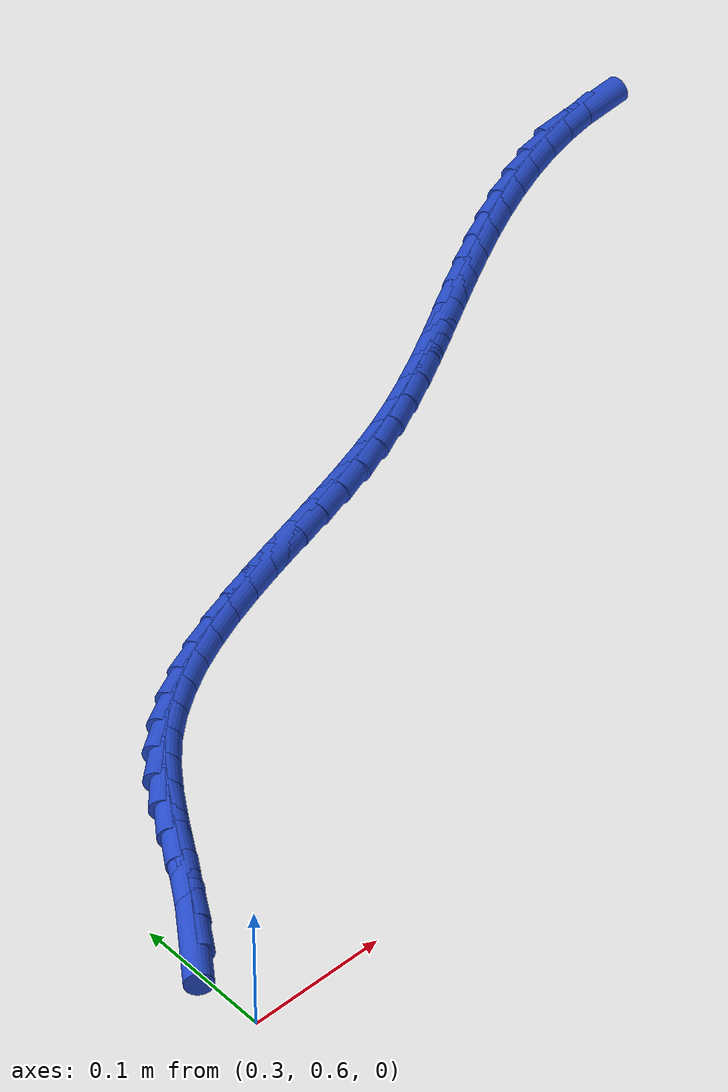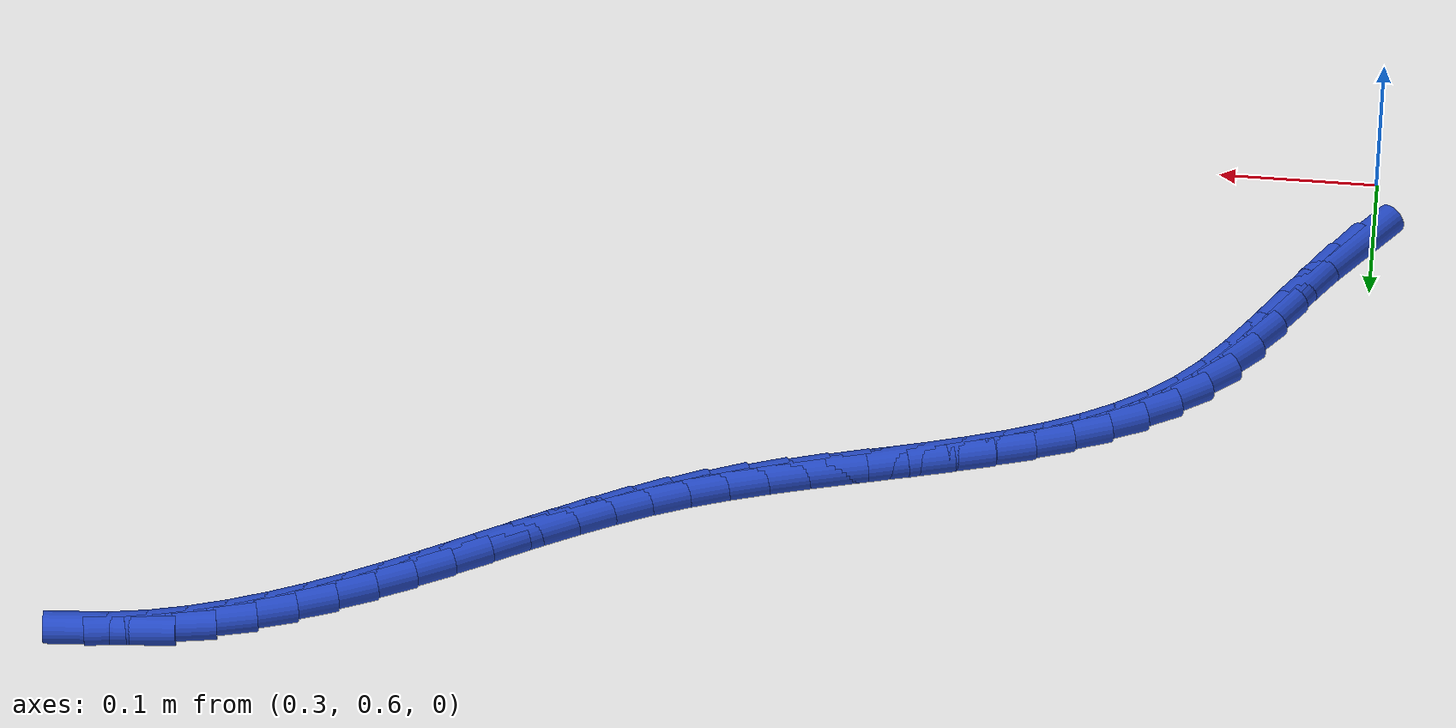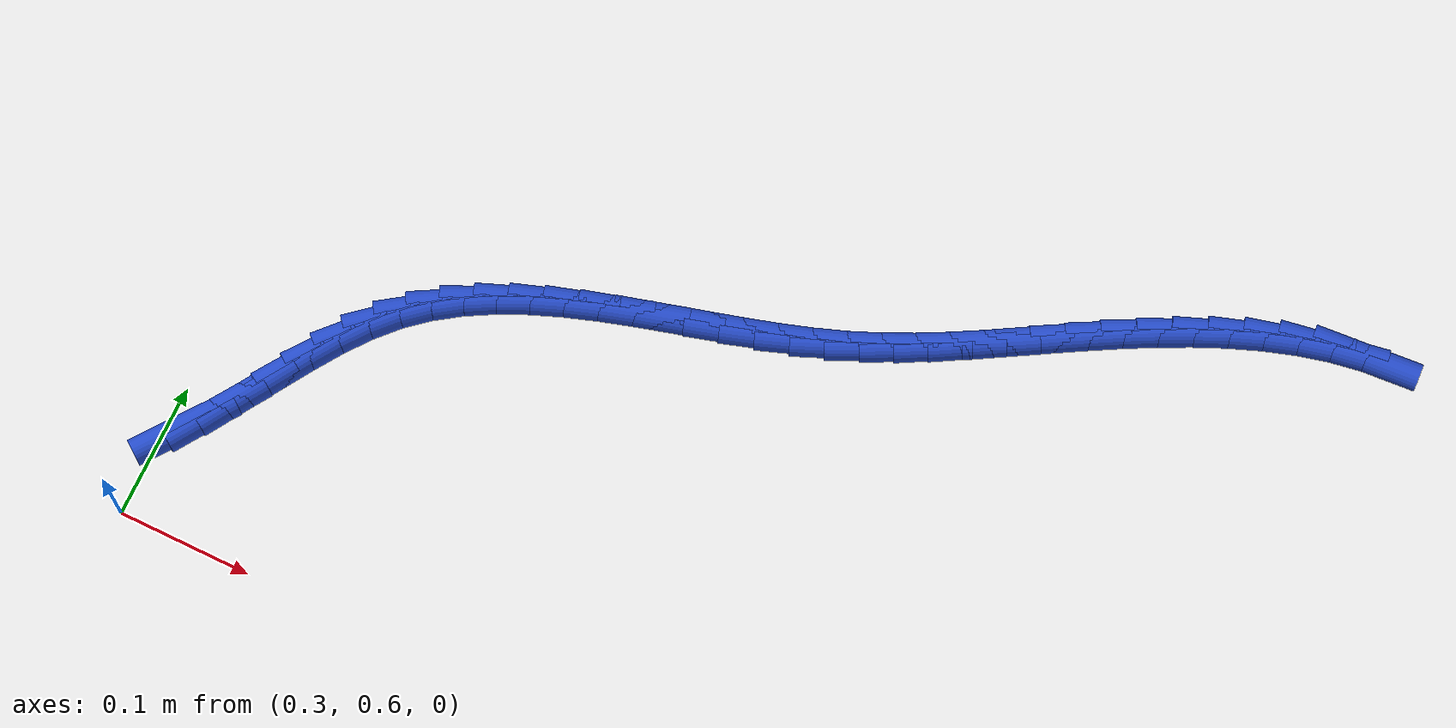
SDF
<sdf version="1.6">
 <world name="default">
  <model name="ground_plane">
   <static>1</static>
   <link name="link">
    <collision name="collision">
     <geometry><plane><normal>0 0 1</normal><size>100 100</size></plane></geometry>
     <surface><friction><ode><mu>100</mu><mu2>50</mu2></ode></friction></surface>
    </collision>
    <visual name="visual">
     <cast_shadows>0</cast_shadows>
     <geometry><plane><normal>0 0 1</normal><size>100 100</size></plane></geometry>
     <material>
      <script><uri>file://media/materials/scripts/gazebo.material</uri><name>Gazebo/WhiteGlow</name></script>
     </material>
    </visual>
   </link>
  </model>
  <model name="line">
   <link name="link_32">
    <pose>0.31317715467941326 0.6729403718139563 0.01 0 1.57 0.9326730001134195</pose>
    <collision name="collision">
     <geometry><cylinder><radius>0.01</radius><length>0.08</length></cylinder></geometry>
    </collision>
    <visual name="visual">
     <material>
      <script><name>Gazebo/Blue</name><uri>file://media/materials/scripts/gazebo.material</uri></script>
     </material>
     <geometry><cylinder><radius>0.01</radius><length>0.08</length></cylinder></geometry>
    </visual>
   </link>
   <link name="link_33">
    <pose>0.32782566175312094 0.6926921206517328 0.01 0 1.57 0.9903112232157183</pose>
    <collision name="collision">
     <geometry><cylinder><radius>0.01</radius><length>0.08</length></cylinder></geometry>
    </collision>
    <visual name="visual">
     <material>
      <script><name>Gazebo/Blue</name><uri>file://media/materials/scripts/gazebo.material</uri></script>
     </material>
     <geometry><cylinder><radius>0.01</radius><length>0.08</length></cylinder></geometry>
    </visual>
   </link>
   <link name="link_34">
    <pose>0.3414309194935599 0.7134362066186392 0.01 0 1.57 1.0179069093631676</pose>
    <collision name="collision">
     <geometry><cylinder><radius>0.01</radius><length>0.08</length></cylinder></geometry>
    </collision>
    <visual name="visual">
     <material>
      <script><name>Gazebo/Blue</name><uri>file://media/materials/scripts/gazebo.material</uri></script>
     </material>
     <geometry><cylinder><radius>0.01</radius><length>0.08</length></cylinder></geometry>
    </visual>
   </link>
   <link name="link_35">
    <pose>0.35449550749543235 0.7346075658781642 0.01 0 1.57 1.0162923461349398</pose>
    <collision name="collision">
     <geometry><cylinder><radius>0.01</radius><length>0.08</length></cylinder></geometry>
    </collision>
    <visual name="visual">
     <material>
      <script><name>Gazebo/Blue</name><uri>file://media/materials/scripts/gazebo.material</uri></script>
     </material>
     <geometry><cylinder><radius>0.01</radius><length>0.08</length></cylinder></geometry>
    </visual>
   </link>
   <link name="link_36">
    <pose>0.36752200535344104 0.7556411345937978 0.01 0 1.57 0.9849360176026919</pose>
    <collision name="collision">
     <geometry><cylinder><radius>0.01</radius><length>0.08</length></cylinder></geometry>
    </collision>
    <visual name="visual">
     <material>
      <script><name>Gazebo/Blue</name><uri>file://media/materials/scripts/gazebo.material</uri></script>
     </material>
     <geometry><cylinder><radius>0.01</radius><length>0.08</length></cylinder></geometry>
    </visual>
   </link>
   <link name="link_37">
    <pose>0.3810129926622886 0.7759718489290295 0.01 0 1.57 0.921913157869965</pose>
    <collision name="collision">
     <geometry><cylinder><radius>0.01</radius><length>0.08</length></cylinder></geometry>
    </collision>
    <visual name="visual">
     <material>
      <script><name>Gazebo/Blue</name><uri>file://media/materials/scripts/gazebo.material</uri></script>
     </material>
     <geometry><cylinder><radius>0.01</radius><length>0.08</length></cylinder></geometry>
    </visual>
   </link>
   <link name="link_38">
    <pose>0.39547104901667735 0.7950346450473482 0.01 0 1.57 0.8248569017872066</pose>
    <collision name="collision">
     <geometry><cylinder><radius>0.01</radius><length>0.08</length></cylinder></geometry>
    </collision>
    <visual name="visual">
     <material>
      <script><name>Gazebo/Blue</name><uri>file://media/materials/scripts/gazebo.material</uri></script>
     </material>
     <geometry><cylinder><radius>0.01</radius><length>0.08</length></cylinder></geometry>
    </visual>
   </link>
   <link name="link_39">
    <pose>0.41139553875256607 0.8122681884023746 0.01 0 1.57 0.7086927014092843</pose>
    <collision name="collision">
     <geometry><cylinder><radius>0.01</radius><length>0.08</length></cylinder></geometry>
    </collision>
    <visual name="visual">
     <material>
      <script><name>Gazebo/Blue</name><uri>file://media/materials/scripts/gazebo.material</uri></script>
     </material>
     <geometry><cylinder><radius>0.01</radius><length>0.08</length></cylinder></geometry>
    </visual>
   </link>
   <link name="link_40">
    <pose>0.4290411034506362 0.8273949916366288 0.01 0 1.57 0.6028204289810302</pose>
    <collision name="collision">
     <geometry><cylinder><radius>0.01</radius><length>0.08</length></cylinder></geometry>
    </collision>
    <visual name="visual">
     <material>
      <script><name>Gazebo/Blue</name><uri>file://media/materials/scripts/gazebo.material</uri></script>
     </material>
     <geometry><cylinder><radius>0.01</radius><length>0.08</length></cylinder></geometry>
    </visual>
   </link>
   <link name="link_41">
    <pose>0.44824983096740956 0.8406160771035082 0.01 0 1.57 0.5119968472825748</pose>
    <collision name="collision">
     <geometry><cylinder><radius>0.01</radius><length>0.08</length></cylinder></geometry>
    </collision>
    <visual name="visual">
     <material>
      <script><name>Gazebo/Blue</name><uri>file://media/materials/scripts/gazebo.material</uri></script>
     </material>
     <geometry><cylinder><radius>0.01</radius><length>0.08</length></cylinder></geometry>
    </visual>
   </link>
   <link name="link_42">
    <pose>0.46882413049327404 0.8521784893492739 0.01 0 1.57 0.43679279473904</pose>
    <collision name="collision">
     <geometry><cylinder><radius>0.01</radius><length>0.08</length></cylinder></geometry>
    </collision>
    <visual name="visual">
     <material>
      <script><name>Gazebo/Blue</name><uri>file://media/materials/scripts/gazebo.material</uri></script>
     </material>
     <geometry><cylinder><radius>0.01</radius><length>0.08</length></cylinder></geometry>
    </visual>
   </link>
   <link name="link_43">
    <pose>0.4905664112186179 0.8623292729201868 0.01 0 1.57 0.3767481389557139</pose>
    <collision name="collision">
     <geometry><cylinder><radius>0.01</radius><length>0.08</length></cylinder></geometry>
    </collision>
    <visual name="visual">
     <material>
      <script><name>Gazebo/Blue</name><uri>file://media/materials/scripts/gazebo.material</uri></script>
     </material>
     <geometry><cylinder><radius>0.01</radius><length>0.08</length></cylinder></geometry>
    </visual>
   </link>
   <link name="link_44">
    <pose>0.5132790823338294 0.8713154723625084 0.01 0 1.57 0.3309258234886349</pose>
    <collision name="collision">
     <geometry><cylinder><radius>0.01</radius><length>0.08</length></cylinder></geometry>
    </collision>
    <visual name="visual">
     <material>
      <script><name>Gazebo/Blue</name><uri>file://media/materials/scripts/gazebo.material</uri></script>
     </material>
     <geometry><cylinder><radius>0.01</radius><length>0.08</length></cylinder></geometry>
    </visual>
   </link>
   <link name="link_45">
    <pose>0.5367645530292958 0.8793841322224989 0.01 0 1.57 0.2983044842982421</pose>
    <collision name="collision">
     <geometry><cylinder><radius>0.01</radius><length>0.08</length></cylinder></geometry>
    </collision>
    <visual name="visual">
     <material>
      <script><name>Gazebo/Blue</name><uri>file://media/materials/scripts/gazebo.material</uri></script>
     </material>
     <geometry><cylinder><radius>0.01</radius><length>0.08</length></cylinder></geometry>
    </visual>
   </link>
   <link name="link_46">
    <pose>0.5608252324954058 0.8867822970464199 0.01 0 1.57 0.2780099863476112</pose>
    <collision name="collision">
     <geometry><cylinder><radius>0.01</radius><length>0.08</length></cylinder></geometry>
    </collision>
    <visual name="visual">
     <material>
      <script><name>Gazebo/Blue</name><uri>file://media/materials/scripts/gazebo.material</uri></script>
     </material>
     <geometry><cylinder><radius>0.01</radius><length>0.08</length></cylinder></geometry>
    </visual>
   </link>
   <link name="link_47">
    <pose>0.5852635299225472 0.8937570113805323 0.01 0 1.57 0.269433459123871</pose>
    <collision name="collision">
     <geometry><cylinder><radius>0.01</radius><length>0.08</length></cylinder></geometry>
    </collision>
    <visual name="visual">
     <material>
      <script><name>Gazebo/Blue</name><uri>file://media/materials/scripts/gazebo.material</uri></script>
     </material>
     <geometry><cylinder><radius>0.01</radius><length>0.08</length></cylinder></geometry>
    </visual>
   </link>
   <link name="link_48">
    <pose>0.609881854501108 0.9005553197710969 0.01 0 1.57 0.27228234156356423</pose>
    <collision name="collision">
     <geometry><cylinder><radius>0.01</radius><length>0.08</length></cylinder></geometry>
    </collision>
    <visual name="visual">
     <material>
      <script><name>Gazebo/Blue</name><uri>file://media/materials/scripts/gazebo.material</uri></script>
     </material>
     <geometry><cylinder><radius>0.01</radius><length>0.08</length></cylinder></geometry>
    </visual>
   </link>
   <link name="link_49">
    <pose>0.6344826154214761 0.9074242667643749 0.01 0 1.57 0.28659458577741215</pose>
    <collision name="collision">
     <geometry><cylinder><radius>0.01</radius><length>0.08</length></cylinder></geometry>
    </collision>
    <visual name="visual">
     <material>
      <script><name>Gazebo/Blue</name><uri>file://media/materials/scripts/gazebo.material</uri></script>
     </material>
     <geometry><cylinder><radius>0.01</radius><length>0.08</length></cylinder></geometry>
    </visual>
   </link>
   <link name="link_50">
    <pose>0.6588682218740398 0.9146108969066272 0.01 0 1.57 0.3127287307479492</pose>
    <collision name="collision">
     <geometry><cylinder><radius>0.01</radius><length>0.08</length></cylinder></geometry>
    </collision>
    <visual name="visual">
     <material>
      <script><name>Gazebo/Blue</name><uri>file://media/materials/scripts/gazebo.material</uri></script>
     </material>
     <geometry><cylinder><radius>0.01</radius><length>0.08</length></cylinder></geometry>
    </visual>
   </link>
   <link name="link_51">
    <pose>0.6828410830491869 0.9223622547441148 0.01 0 1.57 0.3513267244276863</pose>
    <collision name="collision">
     <geometry><cylinder><radius>0.01</radius><length>0.08</length></cylinder></geometry>
    </collision>
    <visual name="visual">
     <material>
      <script><name>Gazebo/Blue</name><uri>file://media/materials/scripts/gazebo.material</uri></script>
     </material>
     <geometry><cylinder><radius>0.01</radius><length>0.08</length></cylinder></geometry>
    </visual>
   </link>
   <link name="link_52">
    <pose>0.7062036081373054 0.9309253848230987 0.01 0 1.57 0.4003787179667804</pose>
    <collision name="collision">
     <geometry><cylinder><radius>0.01</radius><length>0.08</length></cylinder></geometry>
    </collision>
    <visual name="visual">
     <material>
      <script><name>Gazebo/Blue</name><uri>file://media/materials/scripts/gazebo.material</uri></script>
     </material>
     <geometry><cylinder><radius>0.01</radius><length>0.08</length></cylinder></geometry>
    </visual>
   </link>
   <link name="link_53">
    <pose>0.7288064571793971 0.9404918079975982 0.01 0 1.57 0.44558805196662177</pose>
    <collision name="collision">
     <geometry><cylinder><radius>0.01</radius><length>0.08</length></cylinder></geometry>
    </collision>
    <visual name="visual">
     <material>
      <script><name>Gazebo/Blue</name><uri>file://media/materials/scripts/gazebo.material</uri></script>
     </material>
     <geometry><cylinder><radius>0.01</radius><length>0.08</length></cylinder></geometry>
    </visual>
   </link>
   <link name="link_54">
    <pose>0.7507457628767894 0.9509705724134323 0.01 0 1.57 0.4815967942809413</pose>
    <collision name="collision">
     <geometry><cylinder><radius>0.01</radius><length>0.08</length></cylinder></geometry>
    </collision>
    <visual name="visual">
     <material>
      <script><name>Gazebo/Blue</name><uri>file://media/materials/scripts/gazebo.material</uri></script>
     </material>
     <geometry><cylinder><radius>0.01</radius><length>0.08</length></cylinder></geometry>
    </visual>
   </link>
   <link name="link_55">
    <pose>0.7721955254542361 0.9621811217358501 0.01 0 1.57 0.5078390887550811</pose>
    <collision name="collision">
     <geometry><cylinder><radius>0.01</radius><length>0.08</length></cylinder></geometry>
    </collision>
    <visual name="visual">
     <material>
      <script><name>Gazebo/Blue</name><uri>file://media/materials/scripts/gazebo.material</uri></script>
     </material>
     <geometry><cylinder><radius>0.01</radius><length>0.08</length></cylinder></geometry>
    </visual>
   </link>
   <link name="link_56">
    <pose>0.7933297766884574 0.9739428633223114 0.01 0 1.57 0.5240330602664679</pose>
    <collision name="collision">
     <geometry><cylinder><radius>0.01</radius><length>0.08</length></cylinder></geometry>
    </collision>
    <visual name="visual">
     <material>
      <script><name>Gazebo/Blue</name><uri>file://media/materials/scripts/gazebo.material</uri></script>
     </material>
     <geometry><cylinder><radius>0.01</radius><length>0.08</length></cylinder></geometry>
    </visual>
   </link>
   <link name="link_57">
    <pose>0.8143225483561737 0.9860752045302761 0.01 0 1.57 0.5301151782161062</pose>
    <collision name="collision">
     <geometry><cylinder><radius>0.01</radius><length>0.08</length></cylinder></geometry>
    </collision>
    <visual name="visual">
     <material>
      <script><name>Gazebo/Blue</name><uri>file://media/materials/scripts/gazebo.material</uri></script>
     </material>
     <geometry><cylinder><radius>0.01</radius><length>0.08</length></cylinder></geometry>
    </visual>
   </link>
   <link name="link_58">
    <pose>0.8353478722341046 0.9983975527172034 0.01 0 1.57 0.5261917331973283</pose>
    <collision name="collision">
     <geometry><cylinder><radius>0.01</radius><length>0.08</length></cylinder></geometry>
    </collision>
    <visual name="visual">
     <material>
      <script><name>Gazebo/Blue</name><uri>file://media/materials/scripts/gazebo.material</uri></script>
     </material>
     <geometry><cylinder><radius>0.01</radius><length>0.08</length></cylinder></geometry>
    </visual>
   </link>
   <link name="link_59">
    <pose>0.8565797800989711 1.010729315240554 0.01 0 1.57 0.5125138652786664</pose>
    <collision name="collision">
     <geometry><cylinder><radius>0.01</radius><length>0.08</length></cylinder></geometry>
    </collision>
    <visual name="visual">
     <material>
      <script><name>Gazebo/Blue</name><uri>file://media/materials/scripts/gazebo.material</uri></script>
     </material>
     <geometry><cylinder><radius>0.01</radius><length>0.08</length></cylinder></geometry>
    </visual>
   </link>
   <link name="link_60">
    <pose>0.8781923037274931 1.0228898994577877 0.01 0 1.57 0.48969918213205776</pose>
    <collision name="collision">
     <geometry><cylinder><radius>0.01</radius><length>0.08</length></cylinder></geometry>
    </collision>
    <visual name="visual">
     <material>
      <script><name>Gazebo/Blue</name><uri>file://media/materials/scripts/gazebo.material</uri></script>
     </material>
     <geometry><cylinder><radius>0.01</radius><length>0.08</length></cylinder></geometry>
    </visual>
   </link>
   <link name="link_61">
    <pose>0.9003234439649656 1.0346858371994585 0.01 0 1.57 0.4589648728051434</pose>
    <collision name="collision">
     <geometry><cylinder><radius>0.01</radius><length>0.08</length></cylinder></geometry>
    </collision>
    <visual name="visual">
     <material>
      <script><name>Gazebo/Blue</name><uri>file://media/materials/scripts/gazebo.material</uri></script>
     </material>
     <geometry><cylinder><radius>0.01</radius><length>0.08</length></cylinder></geometry>
    </visual>
   </link>
   <link name="link_62">
    <pose>0.922943235800327 1.0458636382867763 0.01 0 1.57 0.4201564963937826</pose>
    <collision name="collision">
     <geometry><cylinder><radius>0.01</radius><length>0.08</length></cylinder></geometry>
    </collision>
    <visual name="visual">
     <material>
      <script><name>Gazebo/Blue</name><uri>file://media/materials/scripts/gazebo.material</uri></script>
     </material>
     <geometry><cylinder><radius>0.01</radius><length>0.08</length></cylinder></geometry>
    </visual>
   </link>
   <link name="link_63">
    <pose>0.9459728079881635 1.056152336069727 0.01 0 1.57 0.37252620290458976</pose>
    <collision name="collision">
     <geometry><cylinder><radius>0.01</radius><length>0.08</length></cylinder></geometry>
    </collision>
    <visual name="visual">
     <material>
      <script><name>Gazebo/Blue</name><uri>file://media/materials/scripts/gazebo.material</uri></script>
     </material>
     <geometry><cylinder><radius>0.01</radius><length>0.08</length></cylinder></geometry>
    </visual>
   </link>
   <link name="link_64">
    <pose>0.9693332837070703 1.065280961905734 0.01 0 1.57 0.31513263259168844</pose>
    <collision name="collision">
     <geometry><cylinder><radius>0.01</radius><length>0.08</length></cylinder></geometry>
    </collision>
    <visual name="visual">
     <material>
      <script><name>Gazebo/Blue</name><uri>file://media/materials/scripts/gazebo.material</uri></script>
     </material>
     <geometry><cylinder><radius>0.01</radius><length>0.08</length></cylinder></geometry>
    </visual>
   </link>
   <link name="link_65">
    <pose>0.9929457861356441 1.0729785471522226 0.01 0 1.57 0.24692304736091622</pose>
    <collision name="collision">
     <geometry><cylinder><radius>0.01</radius><length>0.08</length></cylinder></geometry>
    </collision>
    <visual name="visual">
     <material>
      <script><name>Gazebo/Blue</name><uri>file://media/materials/scripts/gazebo.material</uri></script>
     </material>
     <geometry><cylinder><radius>0.01</radius><length>0.08</length></cylinder></geometry>
    </visual>
   </link>
   <link name="link_66">
    <pose>1.016731438452481 1.0789741231666181 0.01 0 1.57 0.16688431533418271</pose>
    <collision name="collision">
     <geometry><cylinder><radius>0.01</radius><length>0.08</length></cylinder></geometry>
    </collision>
    <visual name="visual">
     <material>
      <script><name>Gazebo/Blue</name><uri>file://media/materials/scripts/gazebo.material</uri></script>
     </material>
     <geometry><cylinder><radius>0.01</radius><length>0.08</length></cylinder></geometry>
    </visual>
   </link>
   <link name="link_67">
    <pose>1.0406113638361767 1.0829967213063445 0.01 0 1.57 0.07429812415650835</pose>
    <collision name="collision">
     <geometry><cylinder><radius>0.01</radius><length>0.08</length></cylinder></geometry>
    </collision>
    <visual name="visual">
     <material>
      <script><name>Gazebo/Blue</name><uri>file://media/materials/scripts/gazebo.material</uri></script>
     </material>
     <geometry><cylinder><radius>0.01</radius><length>0.08</length></cylinder></geometry>
    </visual>
   </link>
  </model>
 </world>
</sdf>
